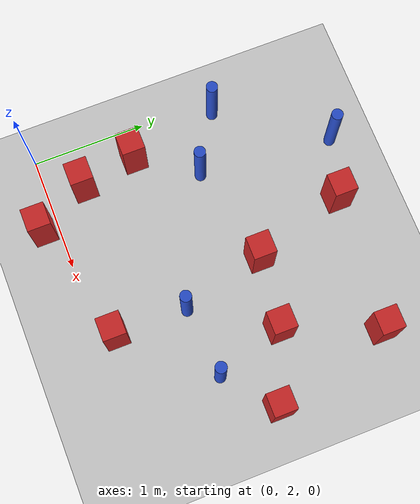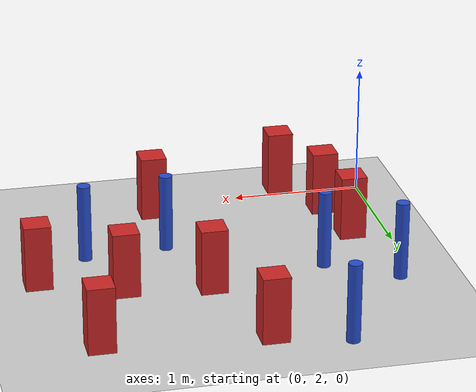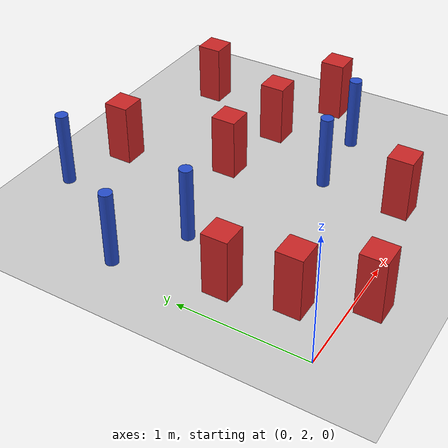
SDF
<sdf version="1.6">
 <world name="default">
  <model name="ground_plane">
   <static>1</static>
   <link name="link">
    <collision name="collision">
     <geometry><plane><normal>0 0 1</normal><size>100 100</size></plane></geometry>
     <surface><friction><ode><mu>100</mu><mu2>50</mu2></ode></friction></surface>
    </collision>
    <visual name="visual">
     <cast_shadows>0</cast_shadows>
     <geometry><plane><normal>0 0 1</normal><size>100 100</size></plane></geometry>
     <material>
      <ambient>1.0 1.0 1.0 1.0</ambient>
      <diffuse>0.8 0.8 0.8 1.0</diffuse>
      <specular>0.01 0.01 0.01 1.000000</specular>
     </material>
    </visual>
   </link>
  </model>
  <model name="pole_obstacle42">
   <static>true</static>
   <pose>0.625954875407 3.32088880928 7.38925637345e-09 -8.47170692799e-08 1.2497676509e-08 -1.74513093016e-07</pose>
   <link name="link">
    <pose>0 0 0.3 0 -0 0</pose>
    <inertial>
     <mass>1</mass>
     <inertia><ixx>0.145833</ixx><ixy>0</ixy><ixz>0</ixz><iyy>0.145833</iyy><iyz>0</iyz><izz>0.125</izz></inertia>
    </inertial>
    <collision name="collision">
     <geometry><cylinder><radius>0.05</radius><length>.6</length></cylinder></geometry>
    </collision>
    <visual name="visual">
     <geometry><cylinder><radius>0.05</radius><length>.6</length></cylinder></geometry>
     <material>
      <script><name>Gazebo/Blue</name><uri>file://media/materials/scripts/gazebo.material</uri></script>
     </material>
    </visual>
   </link>
  </model>
  <model name="square_post_obstacle51">
   <static>true</static>
   <pose>0.380697865721 2.33058414749 1.91545236811e-07 -7.35059704564e-06 1.12565212e-07 2.39332434364e-05</pose>
   <link name="link">
    <pose>0 0 0.25 0 -0 0</pose>
    <inertial>
     <mass>100</mass>
     <inertia>
      <ixx>0.166667</ixx>
      <ixy>0</ixy>
      <ixz>0</ixz>
      <iyy>0.166667</iyy>
      <iyz>0</iyz>
      <izz>0.166667</izz>
     </inertia>
    </inertial>
    <collision name="collision"><geometry><box><size>.2 .2 .5</size></box></geometry></collision>
    <visual name="visual">
     <geometry><box><size>.2 .2 .5</size></box></geometry>
     <material>
      <script><name>Gazebo/Red</name><uri>file://media/materials/scripts/gazebo.material</uri></script>
     </material>
    </visual>
   </link>
  </model>
  <model name="square_post_obstacle69">
   <static>true</static>
   <pose>1.70439567199 2.14129918748 1.91545236811e-07 -7.35059704564e-06 1.12565212e-07 2.39332434364e-05</pose>
   <link name="link">
    <pose>0 0 0.25 0 -0 0</pose>
    <inertial>
     <mass>100</mass>
     <inertia>
      <ixx>0.166667</ixx>
      <ixy>0</ixy>
      <ixz>0</ixz>
      <iyy>0.166667</iyy>
      <iyz>0</iyz>
      <izz>0.166667</izz>
     </inertia>
    </inertial>
    <collision name="collision"><geometry><box><size>.2 .2 .5</size></box></geometry></collision>
    <visual name="visual">
     <geometry><box><size>.2 .2 .5</size></box></geometry>
     <material>
      <script><name>Gazebo/Red</name><uri>file://media/materials/scripts/gazebo.material</uri></script>
     </material>
    </visual>
   </link>
  </model>
  <model name="square_post_obstacle90">
   <static>true</static>
   <pose>2.46440706959 4.23406513678 1.91545236811e-07 -7.35059704564e-06 1.12565212e-07 2.39332434364e-05</pose>
   <link name="link">
    <pose>0 0 0.25 0 -0 0</pose>
    <inertial>
     <mass>100</mass>
     <inertia>
      <ixx>0.166667</ixx>
      <ixy>0</ixy>
      <ixz>0</ixz>
      <iyy>0.166667</iyy>
      <iyz>0</iyz>
      <izz>0.166667</izz>
     </inertia>
    </inertial>
    <collision name="collision"><geometry><box><size>.2 .2 .5</size></box></geometry></collision>
    <visual name="visual">
     <geometry><box><size>.2 .2 .5</size></box></geometry>
     <material>
      <script><name>Gazebo/Red</name><uri>file://media/materials/scripts/gazebo.material</uri></script>
     </material>
    </visual>
   </link>
  </model>
  <model name="square_post_obstacle94">
   <static>true</static>
   <pose>2.75186810921 3.18628712781 1.91545236811e-07 -7.35059704564e-06 1.12565212e-07 2.39332434364e-05</pose>
   <link name="link">
    <pose>0 0 0.25 0 -0 0</pose>
    <inertial>
     <mass>100</mass>
     <inertia>
      <ixx>0.166667</ixx>
      <ixy>0</ixy>
      <ixz>0</ixz>
      <iyy>0.166667</iyy>
      <iyz>0</iyz>
      <izz>0.166667</izz>
     </inertia>
    </inertial>
    <collision name="collision"><geometry><box><size>.2 .2 .5</size></box></geometry></collision>
    <visual name="visual">
     <geometry><box><size>.2 .2 .5</size></box></geometry>
     <material>
      <script><name>Gazebo/Red</name><uri>file://media/materials/scripts/gazebo.material</uri></script>
     </material>
    </visual>
   </link>
  </model>
  <model name="square_post_obstacle125">
   <static>true</static>
   <pose>2.14942397595 3.43456352625 1.91545236811e-07 -7.35059704564e-06 1.12565212e-07 2.39332434364e-05</pose>
   <link name="link">
    <pose>0 0 0.25 0 -0 0</pose>
    <inertial>
     <mass>100</mass>
     <inertia>
      <ixx>0.166667</ixx>
      <ixy>0</ixy>
      <ixz>0</ixz>
      <iyy>0.166667</iyy>
      <iyz>0</iyz>
      <izz>0.166667</izz>
     </inertia>
    </inertial>
    <collision name="collision"><geometry><box><size>.2 .2 .5</size></box></geometry></collision>
    <visual name="visual">
     <geometry><box><size>.2 .2 .5</size></box></geometry>
     <material>
      <script><name>Gazebo/Red</name><uri>file://media/materials/scripts/gazebo.material</uri></script>
     </material>
    </visual>
   </link>
  </model>
  <model name="square_post_obstacle135">
   <static>true</static>
   <pose>1.2628710877 4.3396809338 1.91545236811e-07 -7.35059704564e-06 1.12565212e-07 2.39332434364e-05</pose>
   <link name="link">
    <pose>0 0 0.25 0 -0 0</pose>
    <inertial>
     <mass>100</mass>
     <inertia>
      <ixx>0.166667</ixx>
      <ixy>0</ixy>
      <ixz>0</ixz>
      <iyy>0.166667</iyy>
      <iyz>0</iyz>
      <izz>0.166667</izz>
     </inertia>
    </inertial>
    <collision name="collision"><geometry><box><size>.2 .2 .5</size></box></geometry></collision>
    <visual name="visual">
     <geometry><box><size>.2 .2 .5</size></box></geometry>
     <material>
      <script><name>Gazebo/Red</name><uri>file://media/materials/scripts/gazebo.material</uri></script>
     </material>
    </visual>
   </link>
  </model>
  <model name="square_post_obstacle143">
   <static>true</static>
   <pose>0.627832228468 1.87246103683 1.91545236811e-07 -7.35059704564e-06 1.12565212e-07 2.39332434364e-05</pose>
   <link name="link">
    <pose>0 0 0.25 0 -0 0</pose>
    <inertial>
     <mass>100</mass>
     <inertia>
      <ixx>0.166667</ixx>
      <ixy>0</ixy>
      <ixz>0</ixz>
      <iyy>0.166667</iyy>
      <iyz>0</iyz>
      <izz>0.166667</izz>
     </inertia>
    </inertial>
    <collision name="collision"><geometry><box><size>.2 .2 .5</size></box></geometry></collision>
    <visual name="visual">
     <geometry><box><size>.2 .2 .5</size></box></geometry>
     <material>
      <script><name>Gazebo/Red</name><uri>file://media/materials/scripts/gazebo.material</uri></script>
     </material>
    </visual>
   </link>
  </model>
  <model name="pole_obstacle168">
   <static>true</static>
   <pose>2.34425377297 2.83354693219 7.38925637345e-09 -8.47170692798e-08 1.24976764939e-08 -1.74513093025e-07</pose>
   <link name="link">
    <pose>0 0 0.3 0 -0 0</pose>
    <inertial>
     <mass>1</mass>
     <inertia><ixx>0.145833</ixx><ixy>0</ixy><ixz>0</ixz><iyy>0.145833</iyy><iyz>0</iyz><izz>0.125</izz></inertia>
    </inertial>
    <collision name="collision">
     <geometry><cylinder><radius>0.05</radius><length>.6</length></cylinder></geometry>
    </collision>
    <visual name="visual">
     <geometry><cylinder><radius>0.05</radius><length>.6</length></cylinder></geometry>
     <material>
      <script><name>Gazebo/Blue</name><uri>file://media/materials/scripts/gazebo.material</uri></script>
     </material>
    </visual>
   </link>
  </model>
  <model name="square_post_obstacle191">
   <static>true</static>
   <pose>1.51850456287 3.51195610424 1.91545236811e-07 -7.35059704564e-06 1.12565212e-07 2.39332434364e-05</pose>
   <link name="link">
    <pose>0 0 0.25 0 -0 0</pose>
    <inertial>
     <mass>100</mass>
     <inertia>
      <ixx>0.166667</ixx>
      <ixy>0</ixy>
      <ixz>0</ixz>
      <iyy>0.166667</iyy>
      <iyz>0</iyz>
      <izz>0.166667</izz>
     </inertia>
    </inertial>
    <collision name="collision"><geometry><box><size>.2 .2 .5</size></box></geometry></collision>
    <visual name="visual">
     <geometry><box><size>.2 .2 .5</size></box></geometry>
     <material>
      <script><name>Gazebo/Red</name><uri>file://media/materials/scripts/gazebo.material</uri></script>
     </material>
    </visual>
   </link>
  </model>
  <model name="pole_obstacle193">
   <static>true</static>
   <pose>1.71677221113 2.77912835504 7.38925637345e-09 -8.47170692799e-08 1.24976765053e-08 -1.74513093017e-07</pose>
   <link name="link">
    <pose>0 0 0.3 0 -0 0</pose>
    <inertial>
     <mass>1</mass>
     <inertia><ixx>0.145833</ixx><ixy>0</ixy><ixz>0</ixz><iyy>0.145833</iyy><iyz>0</iyz><izz>0.125</izz></inertia>
    </inertial>
    <collision name="collision">
     <geometry><cylinder><radius>0.05</radius><length>.6</length></cylinder></geometry>
    </collision>
    <visual name="visual">
     <geometry><cylinder><radius>0.05</radius><length>.6</length></cylinder></geometry>
     <material>
      <script><name>Gazebo/Blue</name><uri>file://media/materials/scripts/gazebo.material</uri></script>
     </material>
    </visual>
   </link>
  </model>
  <model name="pole_obstacle211">
   <static>true</static>
   <pose>0.732912647798 4.50684958085 7.38925637345e-09 -8.471706928e-08 1.24976765086e-08 -1.74513093015e-07</pose>
   <link name="link">
    <pose>0 0 0.3 0 -0 0</pose>
    <inertial>
     <mass>1</mass>
     <inertia><ixx>0.145833</ixx><ixy>0</ixy><ixz>0</ixz><iyy>0.145833</iyy><iyz>0</iyz><izz>0.125</izz></inertia>
    </inertial>
    <collision name="collision">
     <geometry><cylinder><radius>0.05</radius><length>.6</length></cylinder></geometry>
    </collision>
    <visual name="visual">
     <geometry><cylinder><radius>0.05</radius><length>.6</length></cylinder></geometry>
     <material>
      <script><name>Gazebo/Blue</name><uri>file://media/materials/scripts/gazebo.material</uri></script>
     </material>
    </visual>
   </link>
  </model>
  <model name="pole_obstacle226">
   <static>true</static>
   <pose>0.123938805042 3.62363284426 7.38925637345e-09 -8.47170692799e-08 1.24976765049e-08 -1.74513093018e-07</pose>
   <link name="link">
    <pose>0 0 0.3 0 -0 0</pose>
    <inertial>
     <mass>1</mass>
     <inertia><ixx>0.145833</ixx><ixy>0</ixy><ixz>0</ixz><iyy>0.145833</iyy><iyz>0</iyz><izz>0.125</izz></inertia>
    </inertial>
    <collision name="collision">
     <geometry><cylinder><radius>0.05</radius><length>.6</length></cylinder></geometry>
    </collision>
    <visual name="visual">
     <geometry><cylinder><radius>0.05</radius><length>.6</length></cylinder></geometry>
     <material>
      <script><name>Gazebo/Blue</name><uri>file://media/materials/scripts/gazebo.material</uri></script>
     </material>
    </visual>
   </link>
  </model>
  <model name="square_post_obstacle209">
   <static>true</static>
   <pose>0.286914964805 2.82239998808 1.91545236811e-07 -7.35059704564e-06 1.12565212e-07 2.39332434364e-05</pose>
   <link name="link">
    <pose>0 0 0.25 0 -0 0</pose>
    <inertial>
     <mass>100</mass>
     <inertia>
      <ixx>0.166667</ixx>
      <ixy>0</ixy>
      <ixz>0</ixz>
      <iyy>0.166667</iyy>
      <iyz>0</iyz>
      <izz>0.166667</izz>
     </inertia>
    </inertial>
    <collision name="collision"><geometry><box><size>.2 .2 .5</size></box></geometry></collision>
    <visual name="visual">
     <geometry><box><size>.2 .2 .5</size></box></geometry>
     <material>
      <script><name>Gazebo/Red</name><uri>file://media/materials/scripts/gazebo.material</uri></script>
     </material>
    </visual>
   </link>
  </model>
 </world>
</sdf>
